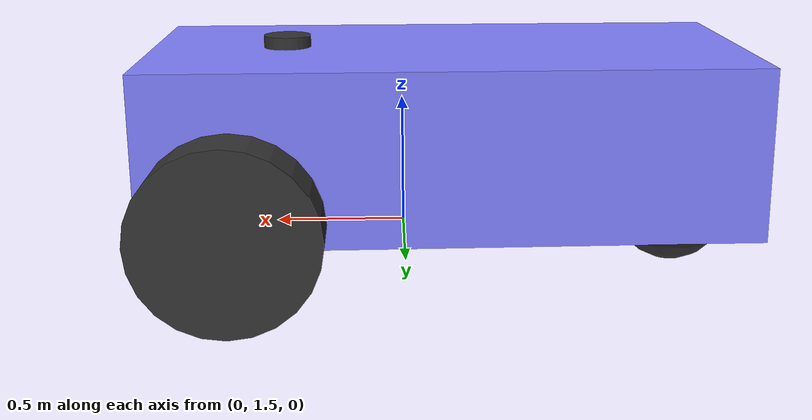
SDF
<?xml version="1.0" ?>
<sdf version="1.7">
    <!-- robot model -->
    <model name='robot' canonical_link='base_link'>
      <pose>0 2 0.325 0 -0 0</pose>

        <!-- base link -->
        <link name='base_link'>
            <pose>-0.151427 -0 0.175 0 -0 0</pose>
            <inertial>
                <mass>5</mass>
                <inertia>
                    <ixx>0.126164</ixx>
                    <ixy>0</ixy>
                    <ixz>0</ixz>
                    <iyy>0.416519</iyy>
                    <iyz>0</iyz>
                    <izz>0.481014</izz>
                </inertia>
            </inertial>
            <visual name='visual'>
                <geometry>
                    <box>
                        <size>2.01142 1 0.568726</size>
                    </box>
                </geometry>
                <material>
                    <ambient>0.5 0.5 1.0 1</ambient>
                    <diffuse>0.5 0.5 1.0 1</diffuse>
                    <specular>0.0 0.0 1.0 1</specular>
                </material>
            </visual>
            <collision name='collision'>
                <geometry>
                    <box>
                        <size>2.01142 1 0.568726</size>
                    </box>
                </geometry>
            </collision>
        </link>

        <!-- left wheel link -->
        <link name='left_wheel'>
            <pose>0.554283 0.6 -0.025 -1.5707 0 0</pose>
            <inertial>
                <mass>2</mass>
                <inertia>
                    <ixx>0.145833</ixx>
                    <ixy>0</ixy>
                    <ixz>0</ixz>
                    <iyy>0.145833</iyy>
                    <iyz>0</iyz>
                    <izz>0.125</izz>
                </inertia>
            </inertial>
            <visual name='visual'>
                <geometry>
                    <cylinder>
                        <radius>0.3</radius>
                        <length>0.2</length>
                    </cylinder>
                </geometry>
                <material>
                    <ambient>0.2 0.2 0.2 1</ambient>
                    <diffuse>0.2 0.2 0.2 1</diffuse>
                    <specular>0.2 0.2 0.2 1</specular>
                </material>
            </visual>
            <collision name='collision'>
                <geometry>
                    <cylinder>
                        <radius>0.3</radius>
                        <length>0.2</length>
                    </cylinder>
                </geometry>
                <surface>
                    <friction>
                        <ode>
                            <mu>1</mu>
                            <mu2>1</mu2>
                            <slip1>0.035</slip1>
                            <slip2>0</slip2>
                            <fdir1>0 0 1</fdir1>
                        </ode>
                        <bullet>
                            <friction>1</friction>
                            <friction2>1</friction2>
                            <rolling_friction>0.1</rolling_friction>
                        </bullet>
                    </friction>
                </surface>
            </collision>
        </link>

        <!-- left wheel joint  -->
        <joint name='left_wheel_joint' type='revolute'>
            <parent>base_link</parent>
            <child>left_wheel</child>
            <axis>
                <xyz>0 0 1</xyz>
                <limit>
                    <lower>-1.79769e+308</lower>
                    <upper>1.79769e+308</upper>
                </limit>
            </axis>
        </joint>

        <!-- right wheel link -->
        <link name='right_wheel'>
            <pose>0.554282 -0.6 -0.025 -1.5707 0 0</pose>
            <inertial>
                <mass>2</mass>
                <inertia>
                    <ixx>0.145833</ixx>
                    <ixy>0</ixy>
                    <ixz>0</ixz>
                    <iyy>0.145833</iyy>
                    <iyz>0</iyz>
                    <izz>0.125</izz>
                </inertia>
            </inertial>
            <visual name='visual'>
                <geometry>
                    <cylinder>
                        <radius>0.3</radius>
                        <length>0.2</length>
                    </cylinder>
                </geometry>
                <material>
                    <ambient>0.2 0.2 0.2 1</ambient>
                    <diffuse>0.2 0.2 0.2 1</diffuse>
                    <specular>0.2 0.2 0.2 1</specular>
                </material>
            </visual>
            <collision name='collision'>
                <geometry>
                    <cylinder>
                        <radius>0.3</radius>
                        <length>0.2</length>
                    </cylinder>
                </geometry>
                <surface>
                    <friction>
                        <ode>
                            <mu>1</mu>
                            <mu2>1</mu2>
                            <slip1>0.035</slip1>
                            <slip2>0</slip2>
                            <fdir1>0 0 1</fdir1>
                        </ode>
                        <bullet>
                            <friction>1</friction>
                            <friction2>1</friction2>
                            <rolling_friction>0.1</rolling_friction>
                        </bullet>
                    </friction>
                </surface>
            </collision>
        </link>

        <!-- right wheel joint -->
        <joint name='right_wheel_joint' type='revolute'>
            <parent>base_link</parent>
            <child>right_wheel</child>
            <axis>
                <xyz>0 0 1</xyz>
                <limit>
                    <lower>-1.79769e+308</lower>
                    <upper>1.79769e+308</upper>
                </limit>
            </axis>
        </joint>

        <!-- caster wheel link -->
        <link name='caster'>
            <pose>-0.957138 -0 -0.125 0 -0 0</pose>
            <inertial>
                <mass>1</mass>
                <inertia>
                    <ixx>0.1</ixx>
                    <ixy>0</ixy>
                    <ixz>0</ixz>
                    <iyy>0.1</iyy>
                    <iyz>0</iyz>
                    <izz>0.1</izz>
                </inertia>
            </inertial>
            <visual name='visual'>
                <geometry>
                    <sphere>
                        <radius>0.2</radius>
                    </sphere>
                </geometry>
                <material>
                    <ambient>0.2 0.2 0.2 1</ambient>
                    <diffuse>0.2 0.2 0.2 1</diffuse>
                    <specular>0.2 0.2 0.2 1</specular>
                </material>
            </visual>
            <collision name='collision'>
                <geometry>
                    <sphere>
                        <radius>0.2</radius>
                    </sphere>
                </geometry>
            </collision>
        </link>

        <!-- caster wheel joint -->
        <joint name='caster_wheel' type='ball'>
            <parent>base_link</parent>
            <child>caster</child>
        </joint>

        <!-- Camera link -->

        <link name="camera_front">
            <pose relative_to="base_link">2.012 0 -0.05 0 0 0</pose>
        </link>

        <joint name="camera_front_joint" type="fixed">
            <child>camera_front</child>
            <parent>base_link</parent>
        </joint>

        <!-- camera optical frame -->
        <link name="camera_front_optical_frame">
            <pose relative_to="base_link">0 0 0 -1.57 0 -1.57</pose>
            <sensor name="color" type="camera">
                <pose>0 0 0 0 -1.57 1.57</pose>
                <update_rate>20</update_rate>
                <always_on>1</always_on>
                <visualize>true</visualize>
                <topic>/camera/color</topic>
                <camera>
                    <horizontal_fov>1.22</horizontal_fov>
                    <image>
                        <width>1280</width>
                        <height>720</height>
                        <format>R8G8B8</format>
                    </image>
                    <clip>
                        <near>0.1</near>
                        <far>50</far>
                    </clip>
                    <lens>
                        <intrinsics>
                        <!-- fx = fy = width / ( 2 * tan (hfov / 2 ) ) -->
                        <fx>914</fx>
                        <fy>914</fy>
                        <!-- cx = ( width + 1 ) / 2 -->
                        <cx>640.5</cx>
                        <!-- cy = ( height + 1 ) / 2 -->
                        <cy>360.5</cy>
                        <s>0</s>
                        </intrinsics>
                    </lens>
                    <noise>
                        <type>gaussian</type>
                        <mean>0</mean>
                        <stddev>0.007</stddev>
                    </noise>
                </camera>
            </sensor>
        </link>

        <joint name="camera_front_optical_joint" type="fixed">
            <child>camera_front_optical_frame</child>
            <parent>camera_front</parent>
        </joint>

        <!-- camera depth frame -->
        <link name="camera_depth_frame">
            <pose relative_to="camera_front">0 0 0 0 0 0</pose>
            <sensor name="depth" type="depth_camera">
                <pose>0 0 0 0 0 0</pose>
                <update_rate>6</update_rate>
                <always_on>1</always_on>
                <camera>
                    <horizontal_fov>1.22</horizontal_fov>
                    <image>
                        <width>640</width>
                        <height>480</height>
                        <format>R_FLOAT32</format>
                    </image>
                    <clip>
                        <near>0.1</near>
                        <far>3</far>
                    </clip>
                    <lens>
                        <intrinsics>
                        <fx>421.61578369140625</fx>
                        <fy>421.61578369140625</fy>
                        <cx>422.2854309082031</cx>
                        <cy>236.57237243652344</cy>
                        <s>0</s>
                        </intrinsics>
                    </lens>
                </camera>
            </sensor>
        </link>

        <joint name="camera_depth_joint" type="fixed">
            <child>camera_depth_frame</child>
            <parent>camera_front</parent>
        </joint>

        <!-- 3D LiDAR link  -->
        <link name="lidar_link">

            <pose relative_to="base_link">0.55 0 0.3 0 0 0</pose>

            <inertial>
                <mass>1.2</mass>
                <inertia>
                    <ixx>0.001087473</ixx>
                    <iyy>0.001087473</iyy>
                    <izz>0.001092437</izz>
                    <ixy>0</ixy>
                    <ixz>0</ixz>
                    <iyz>0</iyz>
                </inertia>
            </inertial>

            <visual name='visual'>
                <geometry>
                    <cylinder>
                        <radius>0.08</radius>
                        <length>0.05</length>
                    </cylinder>
                </geometry>
                <material>
                    <ambient>0.2 0.2 0.2 1</ambient>
                    <diffuse>0.2 0.2 0.2 1</diffuse>
                    <specular>0.2 0.2 0.2 1</specular>
                </material>
            </visual>

            <collision name="collision">
                <geometry>
                    <cylinder>
                        <radius>.08</radius>
                        <length>.05</length>
                    </cylinder>
                </geometry>
            </collision>

            <sensor name="laser" type="gpu_lidar">
                <pose>0 0.02 0 0 0 0</pose>
                <topic>/laserscan</topic>
                <ray>
                    <scan>
                        <horizontal>
                            <samples>500</samples>
                            <resolution>1.0</resolution>
                            <min_angle>0</min_angle>
                            <max_angle>6.28</max_angle>
                        </horizontal>
                    </scan>
                    <range>
                        <min>0.05</min>
                        <max>40.0</max>
                    </range>
                </ray>
                <always_on>true</always_on>
                <visualize>true</visualize>
                <update_rate>30.0</update_rate>
            </sensor>
        </link>

        <joint name="lidar_joint" type="revolute">
            <pose>0 0 -0.036785 0 0 0</pose>

            <child>lidar_link</child>
            <parent>base_link</parent>

            <axis>

                <!-- Revolve around the z-axis -->
                <xyz>0 0 1</xyz>

                <!-- Limit refers to the range of motion of the joint -->
                <limit>
                    <!-- Use a very large number to indicate a continuous revolution -->
                    <lower>-10000000000000000</lower>
                    <upper>10000000000000000</upper>
                </limit>
            </axis>
        </joint>

        <!-- lidar plugin -->

        <!-- differential drive plugin -->
        <plugin filename="libignition-gazebo-diff-drive-system.so" name="ignition::gazebo::systems::DiffDrive">
            <left_joint>left_wheel_joint</left_joint>
            <right_joint>right_wheel_joint</right_joint>
            <wheel_separation>1.2</wheel_separation>
            <wheel_radius>0.2</wheel_radius>
            <odom_topic>/odom</odom_topic>
            <odom_publish_frequency>20</odom_publish_frequency>
            <frame_id>robot/odom</frame_id>
            <child_frame_id>robot/base_link</child_frame_id>
            <topic>/cmd_vel</topic>
            <tf_topic>/tf</tf_topic>
        </plugin>

        <plugin filename="libignition-gazebo-pose-publisher-system.so" name="ignition::gazebo::systems::PosePublisher">
            <publish_link_pose>true</publish_link_pose>
            <publish_collision_pose>false</publish_collision_pose>
            <publish_visual_pose>false</publish_visual_pose>
            <publish_sensor_pose>true</publish_sensor_pose>
            <publish_nested_model_pose>false</publish_nested_model_pose>
            <use_pose_vector_msg>true</use_pose_vector_msg>
            <update_frequency>20</update_frequency>
        </plugin>

    </model>

</sdf>
